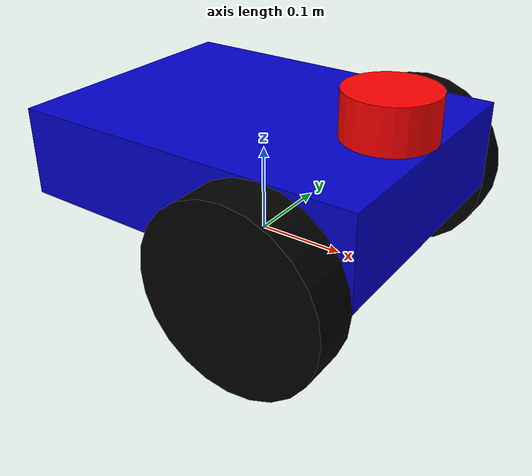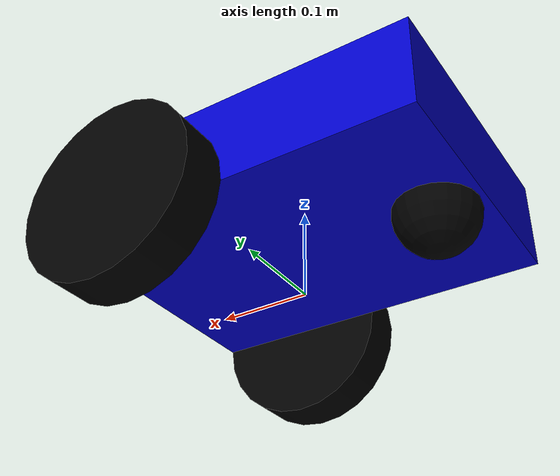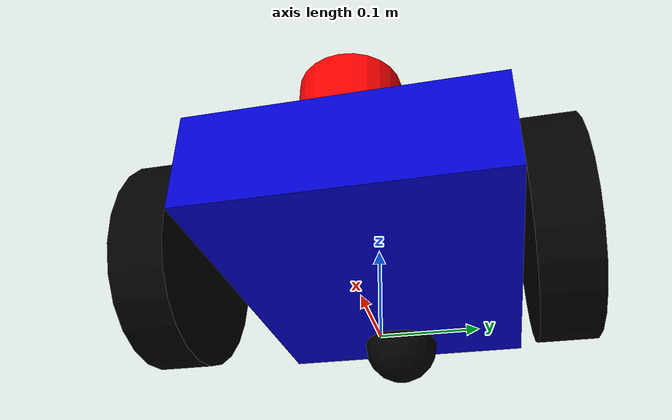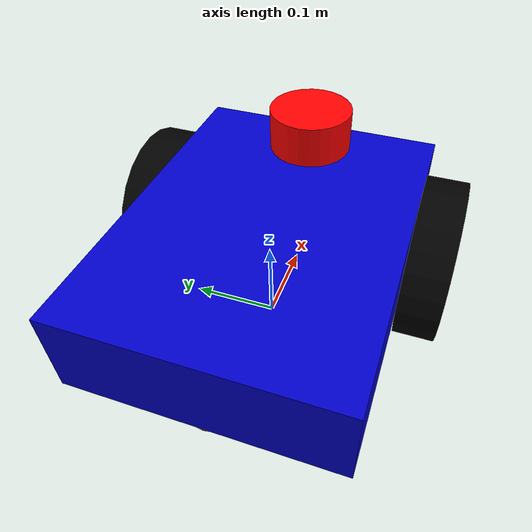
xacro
<?xml version="1.0"?>
<robot xmlns:xacro="http://www.ros.org/wiki/xacro" name="my_agv">

  <!-- ================== 材质与颜色定义 ================== -->
  <material name="blue"><color rgba="0 0 0.8 1"/></material>
  <material name="black"><color rgba="0 0 0 1"/></material>
  <material name="red"><color rgba="1 0 0 1"/></material>

  <!-- ================== 1. 机器人基础投影点 ================== -->
  <!-- 必须有 base_footprint 才能让 Nav2 正确计算地面投影 -->
  <link name="base_footprint"/>

  <joint name="base_joint" type="fixed">
    <parent link="base_footprint"/>
    <child link="base_link"/>
    <origin xyz="0 0 0.1" rpy="0 0 0"/>
  </joint>

  <!-- ================== 2. 底盘主体 (Base Link) ================== -->
  <link name="base_link">
    <visual>
      <geometry><box size="0.4 0.3 0.1"/></geometry>
      <material name="blue"/>
    </visual>
    <collision>
      <geometry><box size="0.4 0.3 0.1"/></geometry>
    </collision>
    <inertial>
      <mass value="10.0"/>
      <inertia ixx="0.08" ixy="0" ixz="0" iyy="0.14" iyz="0" izz="0.2"/>
    </inertial>
  </link>

  <!-- ================== 3. 驱动轮宏定义 ================== -->
  <!-- 使用 xacro 宏定义避免左右轮代码重复 -->
  <xacro:macro name="wheel" params="prefix y_offset">
    <link name="${prefix}_wheel">
      <visual>
        <geometry><cylinder radius="0.1" length="0.05"/></geometry>
        <material name="black"/>
      </visual>
      <collision>
        <geometry><cylinder radius="0.1" length="0.05"/></geometry>
      </collision>
      <inertial>
        <mass value="1.0"/>
        <!-- 简化的圆柱体转动惯量 -->
        <inertia ixx="0.002" ixy="0" ixz="0" iyy="0.002" iyz="0" izz="0.005"/>
      </inertial>
    </link>

    <!-- continuous 类型关节，允许车轮无限旋转 -->
    <joint name="${prefix}_wheel_joint" type="continuous">
      <parent link="base_link"/>
      <child link="${prefix}_wheel"/>
      <!-- 将车轮放倒 (绕X轴旋转-90度) -->
      <origin xyz="0.1 ${y_offset} -0.05" rpy="-1.5708 0 0"/>
      <axis xyz="0 0 1"/>
    </joint>
  </xacro:macro>

  <!-- 实例化左右驱动轮 -->
  <xacro:wheel prefix="left" y_offset="0.175"/>
  <xacro:wheel prefix="right" y_offset="-0.175"/>

  <!-- ================== 4. 后置万向轮/支撑轮 ================== -->
  <!-- 如果没有这个轮子，小车底盘会直接拖在地上 -->
  <link name="caster_wheel">
    <visual>
      <geometry><sphere radius="0.045"/></geometry>
      <material name="black"/>
    </visual>
    <collision>
      <geometry><sphere radius="0.045"/></geometry>
    </collision>
    <inertial>
      <mass value="0.5"/>
      <inertia ixx="0.001" ixy="0" ixz="0" iyy="0.001" iyz="0" izz="0.001"/>
    </inertial>
  </link>

  <joint name="caster_joint" type="fixed">
    <parent link="base_link"/>
    <child link="caster_wheel"/>
    <origin xyz="-0.15 0 -0.055" rpy="0 0 0"/>
  </joint>

  <!-- 极其关键：将万向轮在 Gazebo 中的摩擦力设为 0，让其纯滑动，避免干扰控制算法 -->
  <gazebo reference="caster_wheel">
    <mu1>0.0</mu1>
    <mu2>0.0</mu2>
  </gazebo>

  <!-- ================== 5. 激光雷达 (LiDAR) ================== -->
  <link name="lidar_link">
    <visual>
      <geometry><cylinder radius="0.05" length="0.05"/></geometry>
      <material name="red"/>
    </visual>
  </link>
  <joint name="lidar_joint" type="fixed">
    <parent link="base_link"/>
    <child link="lidar_link"/>
    <!-- 安装在车头正中央上方 -->
    <origin xyz="0.15 0 0.075" rpy="0 0 0"/>
  </joint>

  <!-- ================== 6. Gazebo 仿真插件 ================== -->

  <!-- 差速驱动插件：你的 NMPC 发出的 cmd_vel 就是由它转换为轮子转速的 -->
  <gazebo>
    <plugin name="diff_drive" filename="libgazebo_ros_diff_drive.so">
      <ros>
        <namespace>/</namespace>
      </ros>
      <update_rate>50</update_rate>
      <!-- 必须与上面的 joint 名称严格一致 -->
      <left_joint>left_wheel_joint</left_joint>
      <right_joint>right_wheel_joint</right_joint>
      <wheel_separation>0.35</wheel_separation>
      <wheel_diameter>0.2</wheel_diameter>
      <max_wheel_torque>20</max_wheel_torque>
      <max_wheel_acceleration>1.0</max_wheel_acceleration>

      <!-- 里程计与坐标系发布配置 -->
      <command_topic>cmd_vel</command_topic>
      <publish_odom>true</publish_odom>
      <publish_odom_tf>true</publish_odom_tf>
      <publish_wheel_tf>true</publish_wheel_tf>
      <odometry_topic>odom</odometry_topic>
      <odometry_frame>odom</odometry_frame>
      <robot_base_frame>base_footprint</robot_base_frame>
    </plugin>
  </gazebo>

  <!-- 激光雷达感知插件：提供 /scan 话题，供 Nav2 生成局部避障代价地图 -->
  <gazebo reference="lidar_link">
    <sensor type="ray" name="lidar">
      <pose>0 0 0 0 0 0</pose>
      <!-- 设为 true 可以在 Gazebo 里看到蓝色的雷达射线 -->
      <visualize>false</visualize>
      <update_rate>10</update_rate>
      <ray>
        <scan>
          <horizontal>
            <samples>360</samples>
            <resolution>1</resolution>
            <min_angle>-3.14159</min_angle>
            <max_angle>3.14159</max_angle>
          </horizontal>
        </scan>
        <range>
          <min>0.15</min>
          <max>8.0</max>
          <resolution>0.01</resolution>
        </range>
      </ray>
      <plugin name="gazebo_ros_laser" filename="libgazebo_ros_ray_sensor.so">
        <ros>
          <remapping>~/out:=scan</remapping>
        </ros>
        <output_type>sensor_msgs/LaserScan</output_type>
        <frame_name>lidar_link</frame_name>
      </plugin>
    </sensor>
  </gazebo>

</robot>
